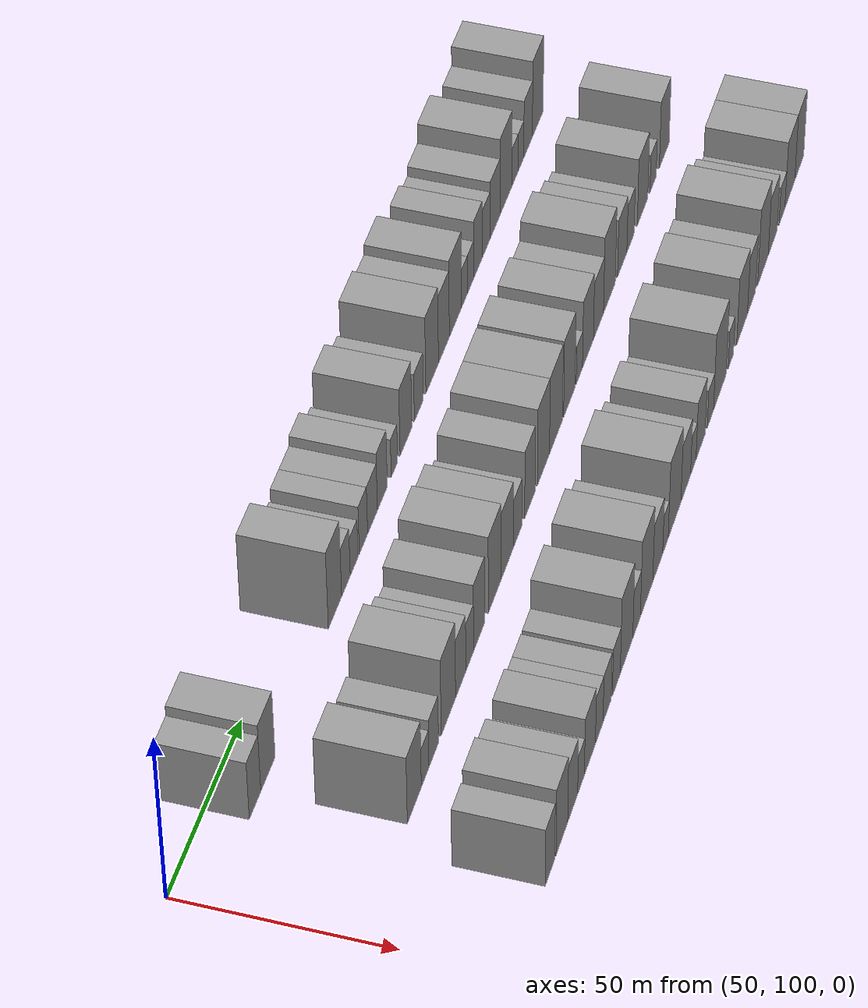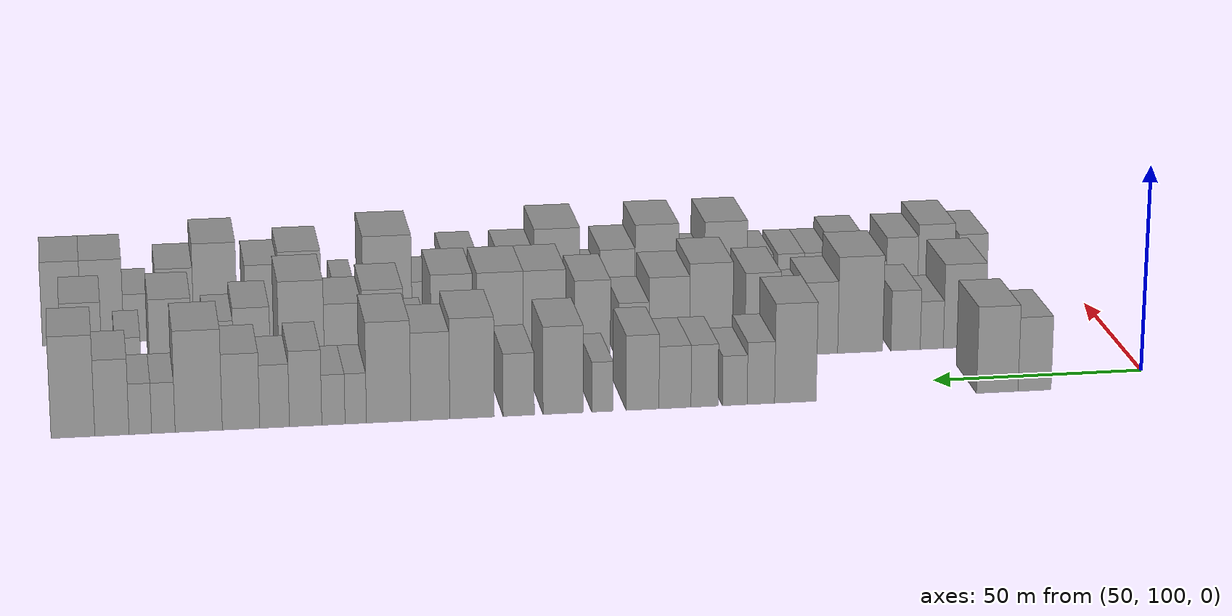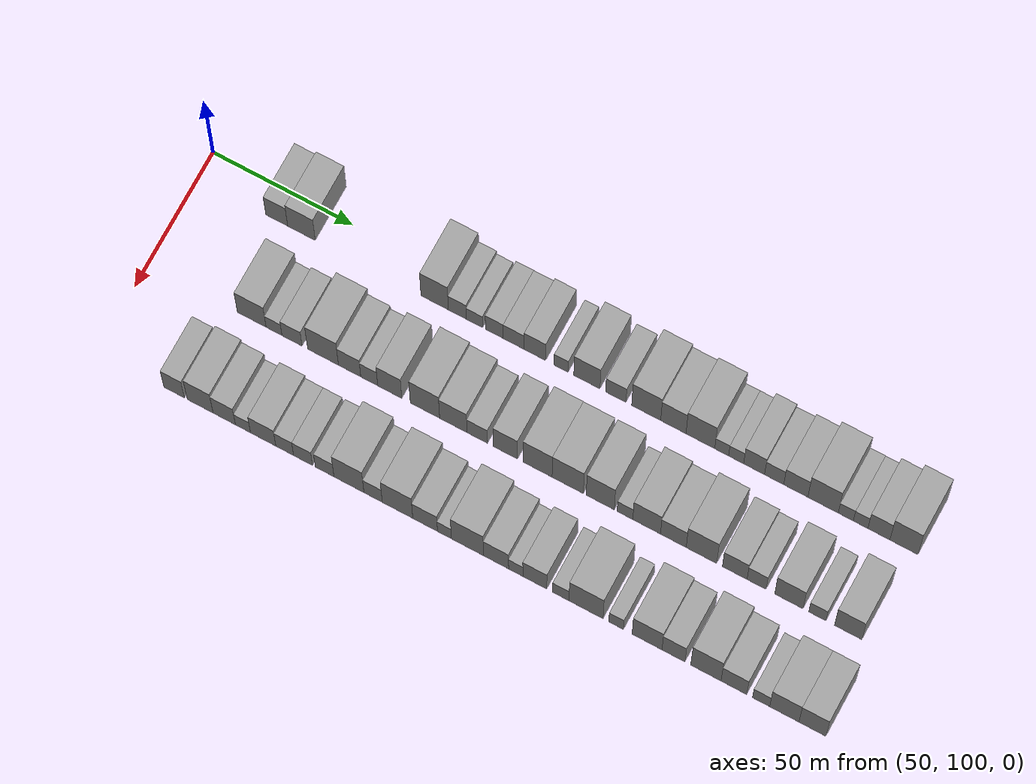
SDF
<sdf version="1.6">
 <world name="default">
  <model name="building_56">
   <static>1</static>
   <pose>50.0000 128.3599 0 0.000000 0.000000 0.000000</pose>
   <link name="link">
    <pose>0 0 9.00 0 0 0</pose>
    <collision name="collision"><geometry><box><size>20.0000 7.8384 18.0000</size></box></geometry></collision>
    <visual name="visual">
     <cast_shadows>0</cast_shadows>
     <geometry><box><size>20.0000 7.8384 18.0000</size></box></geometry>
     <material>
      <script>
       <uri>model://grey_wall/materials/scripts</uri>
       <uri>model://grey_wall/materials/textures</uri>
       <name>vrc/grey_wall</name>
      </script>
     </material>
    </visual>
   </link>
  </model>
  <model name="building_57">
   <static>1</static>
   <pose>50.0000 137.2227 0 0.000000 0.000000 0.000000</pose>
   <link name="link">
    <pose>0 0 10.50 0 0 0</pose>
    <collision name="collision"><geometry><box><size>20.0000 9.8872 21.0000</size></box></geometry></collision>
    <visual name="visual">
     <cast_shadows>0</cast_shadows>
     <geometry><box><size>20.0000 9.8872 21.0000</size></box></geometry>
     <material>
      <script>
       <uri>model://grey_wall/materials/scripts</uri>
       <uri>model://grey_wall/materials/textures</uri>
       <name>vrc/grey_wall</name>
      </script>
     </material>
    </visual>
   </link>
  </model>
  <model name="building_58">
   <static>1</static>
   <pose>50.0000 184.7847 0 0.000000 0.000000 0.000000</pose>
   <link name="link">
    <pose>0 0 12.00 0 0 0</pose>
    <collision name="collision"><geometry><box><size>20.0000 9.7456 24.0000</size></box></geometry></collision>
    <visual name="visual">
     <cast_shadows>0</cast_shadows>
     <geometry><box><size>20.0000 9.7456 24.0000</size></box></geometry>
     <material>
      <script>
       <uri>model://grey_wall/materials/scripts</uri>
       <uri>model://grey_wall/materials/textures</uri>
       <name>vrc/grey_wall</name>
      </script>
     </material>
    </visual>
   </link>
  </model>
  <model name="building_59">
   <static>1</static>
   <pose>50.0000 192.8500 0 0.000000 0.000000 0.000000</pose>
   <link name="link">
    <pose>0 0 7.50 0 0 0</pose>
    <collision name="collision"><geometry><box><size>20.0000 6.3850 15.0000</size></box></geometry></collision>
    <visual name="visual">
     <cast_shadows>0</cast_shadows>
     <geometry><box><size>20.0000 6.3850 15.0000</size></box></geometry>
     <material>
      <script>
       <uri>model://grey_wall/materials/scripts</uri>
       <uri>model://grey_wall/materials/textures</uri>
       <name>vrc/grey_wall</name>
      </script>
     </material>
    </visual>
   </link>
  </model>
  <model name="building_60">
   <static>1</static>
   <pose>50.0000 198.9338 0 0.000000 0.000000 0.000000</pose>
   <link name="link">
    <pose>0 0 6.00 0 0 0</pose>
    <collision name="collision"><geometry><box><size>20.0000 5.7826 12.0000</size></box></geometry></collision>
    <visual name="visual">
     <cast_shadows>0</cast_shadows>
     <geometry><box><size>20.0000 5.7826 12.0000</size></box></geometry>
     <material>
      <script>
       <uri>model://grey_wall/materials/scripts</uri>
       <uri>model://grey_wall/materials/textures</uri>
       <name>vrc/grey_wall</name>
      </script>
     </material>
    </visual>
   </link>
  </model>
  <model name="building_61">
   <static>1</static>
   <pose>50.0000 205.9676 0 0.000000 0.000000 0.000000</pose>
   <link name="link">
    <pose>0 0 7.50 0 0 0</pose>
    <collision name="collision"><geometry><box><size>20.0000 6.2850 15.0000</size></box></geometry></collision>
    <visual name="visual">
     <cast_shadows>0</cast_shadows>
     <geometry><box><size>20.0000 6.2850 15.0000</size></box></geometry>
     <material>
      <script>
       <uri>model://grey_wall/materials/scripts</uri>
       <uri>model://grey_wall/materials/textures</uri>
       <name>vrc/grey_wall</name>
      </script>
     </material>
    </visual>
   </link>
  </model>
  <model name="building_62">
   <static>1</static>
   <pose>50.0000 212.8217 0 0.000000 0.000000 0.000000</pose>
   <link name="link">
    <pose>0 0 7.50 0 0 0</pose>
    <collision name="collision"><geometry><box><size>20.0000 7.4231 15.0000</size></box></geometry></collision>
    <visual name="visual">
     <cast_shadows>0</cast_shadows>
     <geometry><box><size>20.0000 7.4231 15.0000</size></box></geometry>
     <material>
      <script>
       <uri>model://grey_wall/materials/scripts</uri>
       <uri>model://grey_wall/materials/textures</uri>
       <name>vrc/grey_wall</name>
      </script>
     </material>
    </visual>
   </link>
  </model>
  <model name="building_63">
   <static>1</static>
   <pose>50.0000 220.3268 0 0.000000 0.000000 0.000000</pose>
   <link name="link">
    <pose>0 0 9.00 0 0 0</pose>
    <collision name="collision"><geometry><box><size>20.0000 7.5871 18.0000</size></box></geometry></collision>
    <visual name="visual">
     <cast_shadows>0</cast_shadows>
     <geometry><box><size>20.0000 7.5871 18.0000</size></box></geometry>
     <material>
      <script>
       <uri>model://grey_wall/materials/scripts</uri>
       <uri>model://grey_wall/materials/textures</uri>
       <name>vrc/grey_wall</name>
      </script>
     </material>
    </visual>
   </link>
  </model>
  <model name="building_64">
   <static>1</static>
   <pose>50.0000 229.5875 0 0.000000 0.000000 0.000000</pose>
   <link name="link">
    <pose>0 0 6.00 0 0 0</pose>
    <collision name="collision"><geometry><box><size>20.0000 4.9344 12.0000</size></box></geometry></collision>
    <visual name="visual">
     <cast_shadows>0</cast_shadows>
     <geometry><box><size>20.0000 4.9344 12.0000</size></box></geometry>
     <material>
      <script>
       <uri>model://grey_wall/materials/scripts</uri>
       <uri>model://grey_wall/materials/textures</uri>
       <name>vrc/grey_wall</name>
      </script>
     </material>
    </visual>
   </link>
  </model>
  <model name="building_65">
   <static>1</static>
   <pose>50.0000 238.6654 0 0.000000 0.000000 0.000000</pose>
   <link name="link">
    <pose>0 0 10.50 0 0 0</pose>
    <collision name="collision"><geometry><box><size>20.0000 9.2213 21.0000</size></box></geometry></collision>
    <visual name="visual">
     <cast_shadows>0</cast_shadows>
     <geometry><box><size>20.0000 9.2213 21.0000</size></box></geometry>
     <material>
      <script>
       <uri>model://grey_wall/materials/scripts</uri>
       <uri>model://grey_wall/materials/textures</uri>
       <name>vrc/grey_wall</name>
      </script>
     </material>
    </visual>
   </link>
  </model>
  <model name="building_66">
   <static>1</static>
   <pose>50.0000 248.8577 0 0.000000 0.000000 0.000000</pose>
   <link name="link">
    <pose>0 0 7.50 0 0 0</pose>
    <collision name="collision"><geometry><box><size>20.0000 7.1634 15.0000</size></box></geometry></collision>
    <visual name="visual">
     <cast_shadows>0</cast_shadows>
     <geometry><box><size>20.0000 7.1634 15.0000</size></box></geometry>
     <material>
      <script>
       <uri>model://grey_wall/materials/scripts</uri>
       <uri>model://grey_wall/materials/textures</uri>
       <name>vrc/grey_wall</name>
      </script>
     </material>
    </visual>
   </link>
  </model>
  <model name="building_67">
   <static>1</static>
   <pose>50.0000 259.5342 0 0.000000 0.000000 0.000000</pose>
   <link name="link">
    <pose>0 0 12.00 0 0 0</pose>
    <collision name="collision"><geometry><box><size>20.0000 10.1897 24.0000</size></box></geometry></collision>
    <visual name="visual">
     <cast_shadows>0</cast_shadows>
     <geometry><box><size>20.0000 10.1897 24.0000</size></box></geometry>
     <material>
      <script>
       <uri>model://grey_wall/materials/scripts</uri>
       <uri>model://grey_wall/materials/textures</uri>
       <name>vrc/grey_wall</name>
      </script>
     </material>
    </visual>
   </link>
  </model>
  <model name="building_68">
   <static>1</static>
   <pose>50.0000 269.0666 0 0.000000 0.000000 0.000000</pose>
   <link name="link">
    <pose>0 0 10.50 0 0 0</pose>
    <collision name="collision"><geometry><box><size>20.0000 8.8751 21.0000</size></box></geometry></collision>
    <visual name="visual">
     <cast_shadows>0</cast_shadows>
     <geometry><box><size>20.0000 8.8751 21.0000</size></box></geometry>
     <material>
      <script>
       <uri>model://grey_wall/materials/scripts</uri>
       <uri>model://grey_wall/materials/textures</uri>
       <name>vrc/grey_wall</name>
      </script>
     </material>
    </visual>
   </link>
  </model>
  <model name="building_69">
   <static>1</static>
   <pose>50.0000 278.5439 0 0.000000 0.000000 0.000000</pose>
   <link name="link">
    <pose>0 0 12.00 0 0 0</pose>
    <collision name="collision"><geometry><box><size>20.0000 10.0796 24.0000</size></box></geometry></collision>
    <visual name="visual">
     <cast_shadows>0</cast_shadows>
     <geometry><box><size>20.0000 10.0796 24.0000</size></box></geometry>
     <material>
      <script>
       <uri>model://grey_wall/materials/scripts</uri>
       <uri>model://grey_wall/materials/textures</uri>
       <name>vrc/grey_wall</name>
      </script>
     </material>
    </visual>
   </link>
  </model>
  <model name="building_70">
   <static>1</static>
   <pose>50.0000 286.0088 0 0.000000 0.000000 0.000000</pose>
   <link name="link">
    <pose>0 0 6.00 0 0 0</pose>
    <collision name="collision"><geometry><box><size>20.0000 4.8501 12.0000</size></box></geometry></collision>
    <visual name="visual">
     <cast_shadows>0</cast_shadows>
     <geometry><box><size>20.0000 4.8501 12.0000</size></box></geometry>
     <material>
      <script>
       <uri>model://grey_wall/materials/scripts</uri>
       <uri>model://grey_wall/materials/textures</uri>
       <name>vrc/grey_wall</name>
      </script>
     </material>
    </visual>
   </link>
  </model>
  <model name="building_71">
   <static>1</static>
   <pose>50.0000 291.0631 0 0.000000 0.000000 0.000000</pose>
   <link name="link">
    <pose>0 0 6.00 0 0 0</pose>
    <collision name="collision"><geometry><box><size>20.0000 5.2586 12.0000</size></box></geometry></collision>
    <visual name="visual">
     <cast_shadows>0</cast_shadows>
     <geometry><box><size>20.0000 5.2586 12.0000</size></box></geometry>
     <material>
      <script>
       <uri>model://grey_wall/materials/scripts</uri>
       <uri>model://grey_wall/materials/textures</uri>
       <name>vrc/grey_wall</name>
      </script>
     </material>
    </visual>
   </link>
  </model>
  <model name="building_72">
   <static>1</static>
   <pose>50.0000 297.3465 0 0.000000 0.000000 0.000000</pose>
   <link name="link">
    <pose>0 0 9.00 0 0 0</pose>
    <collision name="collision"><geometry><box><size>20.0000 7.3082 18.0000</size></box></geometry></collision>
    <visual name="visual">
     <cast_shadows>0</cast_shadows>
     <geometry><box><size>20.0000 7.3082 18.0000</size></box></geometry>
     <material>
      <script>
       <uri>model://grey_wall/materials/scripts</uri>
       <uri>model://grey_wall/materials/textures</uri>
       <name>vrc/grey_wall</name>
      </script>
     </material>
    </visual>
   </link>
  </model>
  <model name="building_73">
   <static>1</static>
   <pose>50.0000 304.3476 0 0.000000 0.000000 0.000000</pose>
   <link name="link">
    <pose>0 0 7.50 0 0 0</pose>
    <collision name="collision"><geometry><box><size>20.0000 6.6939 15.0000</size></box></geometry></collision>
    <visual name="visual">
     <cast_shadows>0</cast_shadows>
     <geometry><box><size>20.0000 6.6939 15.0000</size></box></geometry>
     <material>
      <script>
       <uri>model://grey_wall/materials/scripts</uri>
       <uri>model://grey_wall/materials/textures</uri>
       <name>vrc/grey_wall</name>
      </script>
     </material>
    </visual>
   </link>
  </model>
  <model name="building_74">
   <static>1</static>
   <pose>50.0000 311.9067 0 0.000000 0.000000 0.000000</pose>
   <link name="link">
    <pose>0 0 9.00 0 0 0</pose>
    <collision name="collision"><geometry><box><size>20.0000 8.4244 18.0000</size></box></geometry></collision>
    <visual name="visual">
     <cast_shadows>0</cast_shadows>
     <geometry><box><size>20.0000 8.4244 18.0000</size></box></geometry>
     <material>
      <script>
       <uri>model://grey_wall/materials/scripts</uri>
       <uri>model://grey_wall/materials/textures</uri>
       <name>vrc/grey_wall</name>
      </script>
     </material>
    </visual>
   </link>
  </model>
  <model name="building_75">
   <static>1</static>
   <pose>50.0000 321.4114 0 0.000000 0.000000 0.000000</pose>
   <link name="link">
    <pose>0 0 12.00 0 0 0</pose>
    <collision name="collision"><geometry><box><size>20.0000 10.5850 24.0000</size></box></geometry></collision>
    <visual name="visual">
     <cast_shadows>0</cast_shadows>
     <geometry><box><size>20.0000 10.5850 24.0000</size></box></geometry>
     <material>
      <script>
       <uri>model://grey_wall/materials/scripts</uri>
       <uri>model://grey_wall/materials/textures</uri>
       <name>vrc/grey_wall</name>
      </script>
     </material>
    </visual>
   </link>
  </model>
  <model name="building_76">
   <static>1</static>
   <pose>50.0000 329.3236 0 0.000000 0.000000 0.000000</pose>
   <link name="link">
    <pose>0 0 6.00 0 0 0</pose>
    <collision name="collision"><geometry><box><size>20.0000 5.2394 12.0000</size></box></geometry></collision>
    <visual name="visual">
     <cast_shadows>0</cast_shadows>
     <geometry><box><size>20.0000 5.2394 12.0000</size></box></geometry>
     <material>
      <script>
       <uri>model://grey_wall/materials/scripts</uri>
       <uri>model://grey_wall/materials/textures</uri>
       <name>vrc/grey_wall</name>
      </script>
     </material>
    </visual>
   </link>
  </model>
  <model name="building_77">
   <static>1</static>
   <pose>50.0000 334.4714 0 0.000000 0.000000 0.000000</pose>
   <link name="link">
    <pose>0 0 6.00 0 0 0</pose>
    <collision name="collision"><geometry><box><size>20.0000 5.0562 12.0000</size></box></geometry></collision>
    <visual name="visual">
     <cast_shadows>0</cast_shadows>
     <geometry><box><size>20.0000 5.0562 12.0000</size></box></geometry>
     <material>
      <script>
       <uri>model://grey_wall/materials/scripts</uri>
       <uri>model://grey_wall/materials/textures</uri>
       <name>vrc/grey_wall</name>
      </script>
     </material>
    </visual>
   </link>
  </model>
  <model name="building_78">
   <static>1</static>
   <pose>50.0000 340.8125 0 0.000000 0.000000 0.000000</pose>
   <link name="link">
    <pose>0 0 9.00 0 0 0</pose>
    <collision name="collision"><geometry><box><size>20.0000 7.6260 18.0000</size></box></geometry></collision>
    <visual name="visual">
     <cast_shadows>0</cast_shadows>
     <geometry><box><size>20.0000 7.6260 18.0000</size></box></geometry>
     <material>
      <script>
       <uri>model://grey_wall/materials/scripts</uri>
       <uri>model://grey_wall/materials/textures</uri>
       <name>vrc/grey_wall</name>
      </script>
     </material>
    </visual>
   </link>
  </model>
  <model name="building_79">
   <static>1</static>
   <pose>50.0000 349.4919 0 0.000000 0.000000 0.000000</pose>
   <link name="link">
    <pose>0 0 12.00 0 0 0</pose>
    <collision name="collision"><geometry><box><size>20.0000 9.7329 24.0000</size></box></geometry></collision>
    <visual name="visual">
     <cast_shadows>0</cast_shadows>
     <geometry><box><size>20.0000 9.7329 24.0000</size></box></geometry>
     <material>
      <script>
       <uri>model://grey_wall/materials/scripts</uri>
       <uri>model://grey_wall/materials/textures</uri>
       <name>vrc/grey_wall</name>
      </script>
     </material>
    </visual>
   </link>
  </model>
  <model name="building_129">
   <static>1</static>
   <pose>82.0000 137.3584 0 0.000000 0.000000 0.000000</pose>
   <link name="link">
    <pose>0 0 10.50 0 0 0</pose>
    <collision name="collision"><geometry><box><size>20.0000 10.2473 21.0000</size></box></geometry></collision>
    <visual name="visual">
     <cast_shadows>0</cast_shadows>
     <geometry><box><size>20.0000 10.2473 21.0000</size></box></geometry>
     <material>
      <script>
       <uri>model://grey_wall/materials/scripts</uri>
       <uri>model://grey_wall/materials/textures</uri>
       <name>vrc/grey_wall</name>
      </script>
     </material>
    </visual>
   </link>
  </model>
  <model name="building_130">
   <static>1</static>
   <pose>82.0000 145.2999 0 0.000000 0.000000 0.000000</pose>
   <link name="link">
    <pose>0 0 6.00 0 0 0</pose>
    <collision name="collision"><geometry><box><size>20.0000 5.6356 12.0000</size></box></geometry></collision>
    <visual name="visual">
     <cast_shadows>0</cast_shadows>
     <geometry><box><size>20.0000 5.6356 12.0000</size></box></geometry>
     <material>
      <script>
       <uri>model://grey_wall/materials/scripts</uri>
       <uri>model://grey_wall/materials/textures</uri>
       <name>vrc/grey_wall</name>
      </script>
     </material>
    </visual>
   </link>
  </model>
  <model name="building_131">
   <static>1</static>
   <pose>82.0000 151.7029 0 0.000000 0.000000 0.000000</pose>
   <link name="link">
    <pose>0 0 7.50 0 0 0</pose>
    <collision name="collision"><geometry><box><size>20.0000 7.1705 15.0000</size></box></geometry></collision>
    <visual name="visual">
     <cast_shadows>0</cast_shadows>
     <geometry><box><size>20.0000 7.1705 15.0000</size></box></geometry>
     <material>
      <script>
       <uri>model://grey_wall/materials/scripts</uri>
       <uri>model://grey_wall/materials/textures</uri>
       <name>vrc/grey_wall</name>
      </script>
     </material>
    </visual>
   </link>
  </model>
  <model name="building_132">
   <static>1</static>
   <pose>82.0000 162.7626 0 0.000000 0.000000 0.000000</pose>
   <link name="link">
    <pose>0 0 12.00 0 0 0</pose>
    <collision name="collision"><geometry><box><size>20.0000 10.9488 24.0000</size></box></geometry></collision>
    <visual name="visual">
     <cast_shadows>0</cast_shadows>
     <geometry><box><size>20.0000 10.9488 24.0000</size></box></geometry>
     <material>
      <script>
       <uri>model://grey_wall/materials/scripts</uri>
       <uri>model://grey_wall/materials/textures</uri>
       <name>vrc/grey_wall</name>
      </script>
     </material>
    </visual>
   </link>
  </model>
  <model name="building_133">
   <static>1</static>
   <pose>82.0000 172.1983 0 0.000000 0.000000 0.000000</pose>
   <link name="link">
    <pose>0 0 9.00 0 0 0</pose>
    <collision name="collision"><geometry><box><size>20.0000 7.9226 18.0000</size></box></geometry></collision>
    <visual name="visual">
     <cast_shadows>0</cast_shadows>
     <geometry><box><size>20.0000 7.9226 18.0000</size></box></geometry>
     <material>
      <script>
       <uri>model://grey_wall/materials/scripts</uri>
       <uri>model://grey_wall/materials/textures</uri>
       <name>vrc/grey_wall</name>
      </script>
     </material>
    </visual>
   </link>
  </model>
  <model name="building_134">
   <static>1</static>
   <pose>82.0000 179.1615 0 0.000000 0.000000 0.000000</pose>
   <link name="link">
    <pose>0 0 7.50 0 0 0</pose>
    <collision name="collision"><geometry><box><size>20.0000 6.0038 15.0000</size></box></geometry></collision>
    <visual name="visual">
     <cast_shadows>0</cast_shadows>
     <geometry><box><size>20.0000 6.0038 15.0000</size></box></geometry>
     <material>
      <script>
       <uri>model://grey_wall/materials/scripts</uri>
       <uri>model://grey_wall/materials/textures</uri>
       <name>vrc/grey_wall</name>
      </script>
     </material>
    </visual>
   </link>
  </model>
  <model name="building_135">
   <static>1</static>
   <pose>82.0000 186.4365 0 0.000000 0.000000 0.000000</pose>
   <link name="link">
    <pose>0 0 10.50 0 0 0</pose>
    <collision name="collision"><geometry><box><size>20.0000 8.5461 21.0000</size></box></geometry></collision>
    <visual name="visual">
     <cast_shadows>0</cast_shadows>
     <geometry><box><size>20.0000 8.5461 21.0000</size></box></geometry>
     <material>
      <script>
       <uri>model://grey_wall/materials/scripts</uri>
       <uri>model://grey_wall/materials/textures</uri>
       <name>vrc/grey_wall</name>
      </script>
     </material>
    </visual>
   </link>
  </model>
  <model name="building_136">
   <static>1</static>
   <pose>82.0000 198.8941 0 0.000000 0.000000 0.000000</pose>
   <link name="link">
    <pose>0 0 12.00 0 0 0</pose>
    <collision name="collision"><geometry><box><size>20.0000 10.3690 24.0000</size></box></geometry></collision>
    <visual name="visual">
     <cast_shadows>0</cast_shadows>
     <geometry><box><size>20.0000 10.3690 24.0000</size></box></geometry>
     <material>
      <script>
       <uri>model://grey_wall/materials/scripts</uri>
       <uri>model://grey_wall/materials/textures</uri>
       <name>vrc/grey_wall</name>
      </script>
     </material>
    </visual>
   </link>
  </model>
  <model name="building_137">
   <static>1</static>
   <pose>82.0000 208.9224 0 0.000000 0.000000 0.000000</pose>
   <link name="link">
    <pose>0 0 10.50 0 0 0</pose>
    <collision name="collision"><geometry><box><size>20.0000 9.6878 21.0000</size></box></geometry></collision>
    <visual name="visual">
     <cast_shadows>0</cast_shadows>
     <geometry><box><size>20.0000 9.6878 21.0000</size></box></geometry>
     <material>
      <script>
       <uri>model://grey_wall/materials/scripts</uri>
       <uri>model://grey_wall/materials/textures</uri>
       <name>vrc/grey_wall</name>
      </script>
     </material>
    </visual>
   </link>
  </model>
  <model name="building_138">
   <static>1</static>
   <pose>82.0000 217.3821 0 0.000000 0.000000 0.000000</pose>
   <link name="link">
    <pose>0 0 7.50 0 0 0</pose>
    <collision name="collision"><geometry><box><size>20.0000 7.2315 15.0000</size></box></geometry></collision>
    <visual name="visual">
     <cast_shadows>0</cast_shadows>
     <geometry><box><size>20.0000 7.2315 15.0000</size></box></geometry>
     <material>
      <script>
       <uri>model://grey_wall/materials/scripts</uri>
       <uri>model://grey_wall/materials/textures</uri>
       <name>vrc/grey_wall</name>
      </script>
     </material>
    </visual>
   </link>
  </model>
  <model name="building_139">
   <static>1</static>
   <pose>82.0000 227.2700 0 0.000000 0.000000 0.000000</pose>
   <link name="link">
    <pose>0 0 10.50 0 0 0</pose>
    <collision name="collision"><geometry><box><size>20.0000 8.5444 21.0000</size></box></geometry></collision>
    <visual name="visual">
     <cast_shadows>0</cast_shadows>
     <geometry><box><size>20.0000 8.5444 21.0000</size></box></geometry>
     <material>
      <script>
       <uri>model://grey_wall/materials/scripts</uri>
       <uri>model://grey_wall/materials/textures</uri>
       <name>vrc/grey_wall</name>
      </script>
     </material>
    </visual>
   </link>
  </model>
  <model name="building_140">
   <static>1</static>
   <pose>82.0000 238.6148 0 0.000000 0.000000 0.000000</pose>
   <link name="link">
    <pose>0 0 12.00 0 0 0</pose>
    <collision name="collision"><geometry><box><size>20.0000 10.1452 24.0000</size></box></geometry></collision>
    <visual name="visual">
     <cast_shadows>0</cast_shadows>
     <geometry><box><size>20.0000 10.1452 24.0000</size></box></geometry>
     <material>
      <script>
       <uri>model://grey_wall/materials/scripts</uri>
       <uri>model://grey_wall/materials/textures</uri>
       <name>vrc/grey_wall</name>
      </script>
     </material>
    </visual>
   </link>
  </model>
  <model name="building_141">
   <static>1</static>
   <pose>82.0000 249.1798 0 0.000000 0.000000 0.000000</pose>
   <link name="link">
    <pose>0 0 12.00 0 0 0</pose>
    <collision name="collision"><geometry><box><size>20.0000 10.9849 24.0000</size></box></geometry></collision>
    <visual name="visual">
     <cast_shadows>0</cast_shadows>
     <geometry><box><size>20.0000 10.9849 24.0000</size></box></geometry>
     <material>
      <script>
       <uri>model://grey_wall/materials/scripts</uri>
       <uri>model://grey_wall/materials/textures</uri>
       <name>vrc/grey_wall</name>
      </script>
     </material>
    </visual>
   </link>
  </model>
  <model name="building_142">
   <static>1</static>
   <pose>82.0000 260.5869 0 0.000000 0.000000 0.000000</pose>
   <link name="link">
    <pose>0 0 12.00 0 0 0</pose>
    <collision name="collision"><geometry><box><size>20.0000 9.8292 24.0000</size></box></geometry></collision>
    <visual name="visual">
     <cast_shadows>0</cast_shadows>
     <geometry><box><size>20.0000 9.8292 24.0000</size></box></geometry>
     <material>
      <script>
       <uri>model://grey_wall/materials/scripts</uri>
       <uri>model://grey_wall/materials/textures</uri>
       <name>vrc/grey_wall</name>
      </script>
     </material>
    </visual>
   </link>
  </model>
  <model name="building_143">
   <static>1</static>
   <pose>82.0000 269.2338 0 0.000000 0.000000 0.000000</pose>
   <link name="link">
    <pose>0 0 6.00 0 0 0</pose>
    <collision name="collision"><geometry><box><size>20.0000 5.4647 12.0000</size></box></geometry></collision>
    <visual name="visual">
     <cast_shadows>0</cast_shadows>
     <geometry><box><size>20.0000 5.4647 12.0000</size></box></geometry>
     <material>
      <script>
       <uri>model://grey_wall/materials/scripts</uri>
       <uri>model://grey_wall/materials/textures</uri>
       <name>vrc/grey_wall</name>
      </script>
     </material>
    </visual>
   </link>
  </model>
  <model name="building_144">
   <static>1</static>
   <pose>82.0000 276.8035 0 0.000000 0.000000 0.000000</pose>
   <link name="link">
    <pose>0 0 10.50 0 0 0</pose>
    <collision name="collision"><geometry><box><size>20.0000 9.6748 21.0000</size></box></geometry></collision>
    <visual name="visual">
     <cast_shadows>0</cast_shadows>
     <geometry><box><size>20.0000 9.6748 21.0000</size></box></geometry>
     <material>
      <script>
       <uri>model://grey_wall/materials/scripts</uri>
       <uri>model://grey_wall/materials/textures</uri>
       <name>vrc/grey_wall</name>
      </script>
     </material>
    </visual>
   </link>
  </model>
  <model name="building_145">
   <static>1</static>
   <pose>82.0000 286.1169 0 0.000000 0.000000 0.000000</pose>
   <link name="link">
    <pose>0 0 9.00 0 0 0</pose>
    <collision name="collision"><geometry><box><size>20.0000 8.9520 18.0000</size></box></geometry></collision>
    <visual name="visual">
     <cast_shadows>0</cast_shadows>
     <geometry><box><size>20.0000 8.9520 18.0000</size></box></geometry>
     <material>
      <script>
       <uri>model://grey_wall/materials/scripts</uri>
       <uri>model://grey_wall/materials/textures</uri>
       <name>vrc/grey_wall</name>
      </script>
     </material>
    </visual>
   </link>
  </model>
  <model name="building_146">
   <static>1</static>
   <pose>82.0000 295.9011 0 0.000000 0.000000 0.000000</pose>
   <link name="link">
    <pose>0 0 12.00 0 0 0</pose>
    <collision name="collision"><geometry><box><size>20.0000 10.6165 24.0000</size></box></geometry></collision>
    <visual name="visual">
     <cast_shadows>0</cast_shadows>
     <geometry><box><size>20.0000 10.6165 24.0000</size></box></geometry>
     <material>
      <script>
       <uri>model://grey_wall/materials/scripts</uri>
       <uri>model://grey_wall/materials/textures</uri>
       <name>vrc/grey_wall</name>
      </script>
     </material>
    </visual>
   </link>
  </model>
  <model name="building_147">
   <static>1</static>
   <pose>82.0000 307.4926 0 0.000000 0.000000 0.000000</pose>
   <link name="link">
    <pose>0 0 9.00 0 0 0</pose>
    <collision name="collision"><geometry><box><size>20.0000 8.5664 18.0000</size></box></geometry></collision>
    <visual name="visual">
     <cast_shadows>0</cast_shadows>
     <geometry><box><size>20.0000 8.5664 18.0000</size></box></geometry>
     <material>
      <script>
       <uri>model://grey_wall/materials/scripts</uri>
       <uri>model://grey_wall/materials/textures</uri>
       <name>vrc/grey_wall</name>
      </script>
     </material>
    </visual>
   </link>
  </model>
  <model name="building_148">
   <static>1</static>
   <pose>82.0000 315.0763 0 0.000000 0.000000 0.000000</pose>
   <link name="link">
    <pose>0 0 7.50 0 0 0</pose>
    <collision name="collision"><geometry><box><size>20.0000 6.6009 15.0000</size></box></geometry></collision>
    <visual name="visual">
     <cast_shadows>0</cast_shadows>
     <geometry><box><size>20.0000 6.6009 15.0000</size></box></geometry>
     <material>
      <script>
       <uri>model://grey_wall/materials/scripts</uri>
       <uri>model://grey_wall/materials/textures</uri>
       <name>vrc/grey_wall</name>
      </script>
     </material>
    </visual>
   </link>
  </model>
  <model name="building_149">
   <static>1</static>
   <pose>82.0000 326.2870 0 0.000000 0.000000 0.000000</pose>
   <link name="link">
    <pose>0 0 10.50 0 0 0</pose>
    <collision name="collision"><geometry><box><size>20.0000 9.8205 21.0000</size></box></geometry></collision>
    <visual name="visual">
     <cast_shadows>0</cast_shadows>
     <geometry><box><size>20.0000 9.8205 21.0000</size></box></geometry>
     <material>
      <script>
       <uri>model://grey_wall/materials/scripts</uri>
       <uri>model://grey_wall/materials/textures</uri>
       <name>vrc/grey_wall</name>
      </script>
     </material>
    </visual>
   </link>
  </model>
  <model name="building_150">
   <static>1</static>
   <pose>82.0000 336.1662 0 0.000000 0.000000 0.000000</pose>
   <link name="link">
    <pose>0 0 6.00 0 0 0</pose>
    <collision name="collision"><geometry><box><size>20.0000 5.9378 12.0000</size></box></geometry></collision>
    <visual name="visual">
     <cast_shadows>0</cast_shadows>
     <geometry><box><size>20.0000 5.9378 12.0000</size></box></geometry>
     <material>
      <script>
       <uri>model://grey_wall/materials/scripts</uri>
       <uri>model://grey_wall/materials/textures</uri>
       <name>vrc/grey_wall</name>
      </script>
     </material>
    </visual>
   </link>
  </model>
  <model name="building_151">
   <static>1</static>
   <pose>82.0000 346.8562 0 0.000000 0.000000 0.000000</pose>
   <link name="link">
    <pose>0 0 10.50 0 0 0</pose>
    <collision name="collision"><geometry><box><size>20.0000 9.4422 21.0000</size></box></geometry></collision>
    <visual name="visual">
     <cast_shadows>0</cast_shadows>
     <geometry><box><size>20.0000 9.4422 21.0000</size></box></geometry>
     <material>
      <script>
       <uri>model://grey_wall/materials/scripts</uri>
       <uri>model://grey_wall/materials/textures</uri>
       <name>vrc/grey_wall</name>
      </script>
     </material>
    </visual>
   </link>
  </model>
  <model name="building_198">
   <static>1</static>
   <pose>114.0000 127.6943 0 0.000000 0.000000 0.000000</pose>
   <link name="link">
    <pose>0 0 9.00 0 0 0</pose>
    <collision name="collision"><geometry><box><size>20.0000 7.3404 18.0000</size></box></geometry></collision>
    <visual name="visual">
     <cast_shadows>0</cast_shadows>
     <geometry><box><size>20.0000 7.3404 18.0000</size></box></geometry>
     <material>
      <script>
       <uri>model://grey_wall/materials/scripts</uri>
       <uri>model://grey_wall/materials/textures</uri>
       <name>vrc/grey_wall</name>
      </script>
     </material>
    </visual>
   </link>
  </model>
  <model name="building_199">
   <static>1</static>
   <pose>114.0000 136.9642 0 0.000000 0.000000 0.000000</pose>
   <link name="link">
    <pose>0 0 10.50 0 0 0</pose>
    <collision name="collision"><geometry><box><size>20.0000 9.1994 21.0000</size></box></geometry></collision>
    <visual name="visual">
     <cast_shadows>0</cast_shadows>
     <geometry><box><size>20.0000 9.1994 21.0000</size></box></geometry>
     <material>
      <script>
       <uri>model://grey_wall/materials/scripts</uri>
       <uri>model://grey_wall/materials/textures</uri>
       <name>vrc/grey_wall</name>
      </script>
     </material>
    </visual>
   </link>
  </model>
  <model name="building_200">
   <static>1</static>
   <pose>114.0000 145.5377 0 0.000000 0.000000 0.000000</pose>
   <link name="link">
    <pose>0 0 9.00 0 0 0</pose>
    <collision name="collision"><geometry><box><size>20.0000 7.9476 18.0000</size></box></geometry></collision>
    <visual name="visual">
     <cast_shadows>0</cast_shadows>
     <geometry><box><size>20.0000 7.9476 18.0000</size></box></geometry>
     <material>
      <script>
       <uri>model://grey_wall/materials/scripts</uri>
       <uri>model://grey_wall/materials/textures</uri>
       <name>vrc/grey_wall</name>
      </script>
     </material>
    </visual>
   </link>
  </model>
  <model name="building_201">
   <static>1</static>
   <pose>114.0000 152.1991 0 0.000000 0.000000 0.000000</pose>
   <link name="link">
    <pose>0 0 6.00 0 0 0</pose>
    <collision name="collision"><geometry><box><size>20.0000 5.3752 12.0000</size></box></geometry></collision>
    <visual name="visual">
     <cast_shadows>0</cast_shadows>
     <geometry><box><size>20.0000 5.3752 12.0000</size></box></geometry>
     <material>
      <script>
       <uri>model://grey_wall/materials/scripts</uri>
       <uri>model://grey_wall/materials/textures</uri>
       <name>vrc/grey_wall</name>
      </script>
     </material>
    </visual>
   </link>
  </model>
  <model name="building_202">
   <static>1</static>
   <pose>114.0000 159.3709 0 0.000000 0.000000 0.000000</pose>
   <link name="link">
    <pose>0 0 9.00 0 0 0</pose>
    <collision name="collision"><geometry><box><size>20.0000 8.9683 18.0000</size></box></geometry></collision>
    <visual name="visual">
     <cast_shadows>0</cast_shadows>
     <geometry><box><size>20.0000 8.9683 18.0000</size></box></geometry>
     <material>
      <script>
       <uri>model://grey_wall/materials/scripts</uri>
       <uri>model://grey_wall/materials/textures</uri>
       <name>vrc/grey_wall</name>
      </script>
     </material>
    </visual>
   </link>
  </model>
  <model name="building_203">
   <static>1</static>
   <pose>114.0000 166.9862 0 0.000000 0.000000 0.000000</pose>
   <link name="link">
    <pose>0 0 7.50 0 0 0</pose>
    <collision name="collision"><geometry><box><size>20.0000 6.2623 15.0000</size></box></geometry></collision>
    <visual name="visual">
     <cast_shadows>0</cast_shadows>
     <geometry><box><size>20.0000 6.2623 15.0000</size></box></geometry>
     <material>
      <script>
       <uri>model://grey_wall/materials/scripts</uri>
       <uri>model://grey_wall/materials/textures</uri>
       <name>vrc/grey_wall</name>
      </script>
     </material>
    </visual>
   </link>
  </model>
  <model name="building_204">
   <static>1</static>
   <pose>114.0000 173.4697 0 0.000000 0.000000 0.000000</pose>
   <link name="link">
    <pose>0 0 7.50 0 0 0</pose>
    <collision name="collision"><geometry><box><size>20.0000 6.7047 15.0000</size></box></geometry></collision>
    <visual name="visual">
     <cast_shadows>0</cast_shadows>
     <geometry><box><size>20.0000 6.7047 15.0000</size></box></geometry>
     <material>
      <script>
       <uri>model://grey_wall/materials/scripts</uri>
       <uri>model://grey_wall/materials/textures</uri>
       <name>vrc/grey_wall</name>
      </script>
     </material>
    </visual>
   </link>
  </model>
  <model name="building_205">
   <static>1</static>
   <pose>114.0000 181.1130 0 0.000000 0.000000 0.000000</pose>
   <link name="link">
    <pose>0 0 7.50 0 0 0</pose>
    <collision name="collision"><geometry><box><size>20.0000 6.5818 15.0000</size></box></geometry></collision>
    <visual name="visual">
     <cast_shadows>0</cast_shadows>
     <geometry><box><size>20.0000 6.5818 15.0000</size></box></geometry>
     <material>
      <script>
       <uri>model://grey_wall/materials/scripts</uri>
       <uri>model://grey_wall/materials/textures</uri>
       <name>vrc/grey_wall</name>
      </script>
     </material>
    </visual>
   </link>
  </model>
  <model name="building_206">
   <static>1</static>
   <pose>114.0000 189.7043 0 0.000000 0.000000 0.000000</pose>
   <link name="link">
    <pose>0 0 12.00 0 0 0</pose>
    <collision name="collision"><geometry><box><size>20.0000 10.6008 24.0000</size></box></geometry></collision>
    <visual name="visual">
     <cast_shadows>0</cast_shadows>
     <geometry><box><size>20.0000 10.6008 24.0000</size></box></geometry>
     <material>
      <script>
       <uri>model://grey_wall/materials/scripts</uri>
       <uri>model://grey_wall/materials/textures</uri>
       <name>vrc/grey_wall</name>
      </script>
     </material>
    </visual>
   </link>
  </model>
  <model name="building_207">
   <static>1</static>
   <pose>114.0000 198.2244 0 0.000000 0.000000 0.000000</pose>
   <link name="link">
    <pose>0 0 7.50 0 0 0</pose>
    <collision name="collision"><geometry><box><size>20.0000 6.4396 15.0000</size></box></geometry></collision>
    <visual name="visual">
     <cast_shadows>0</cast_shadows>
     <geometry><box><size>20.0000 6.4396 15.0000</size></box></geometry>
     <material>
      <script>
       <uri>model://grey_wall/materials/scripts</uri>
       <uri>model://grey_wall/materials/textures</uri>
       <name>vrc/grey_wall</name>
      </script>
     </material>
    </visual>
   </link>
  </model>
  <model name="building_208">
   <static>1</static>
   <pose>114.0000 206.8115 0 0.000000 0.000000 0.000000</pose>
   <link name="link">
    <pose>0 0 12.00 0 0 0</pose>
    <collision name="collision"><geometry><box><size>20.0000 10.7345 24.0000</size></box></geometry></collision>
    <visual name="visual">
     <cast_shadows>0</cast_shadows>
     <geometry><box><size>20.0000 10.7345 24.0000</size></box></geometry>
     <material>
      <script>
       <uri>model://grey_wall/materials/scripts</uri>
       <uri>model://grey_wall/materials/textures</uri>
       <name>vrc/grey_wall</name>
      </script>
     </material>
    </visual>
   </link>
  </model>
  <model name="building_209">
   <static>1</static>
   <pose>114.0000 216.5246 0 0.000000 0.000000 0.000000</pose>
   <link name="link">
    <pose>0 0 9.00 0 0 0</pose>
    <collision name="collision"><geometry><box><size>20.0000 8.6918 18.0000</size></box></geometry></collision>
    <visual name="visual">
     <cast_shadows>0</cast_shadows>
     <geometry><box><size>20.0000 8.6918 18.0000</size></box></geometry>
     <material>
      <script>
       <uri>model://grey_wall/materials/scripts</uri>
       <uri>model://grey_wall/materials/textures</uri>
       <name>vrc/grey_wall</name>
      </script>
     </material>
    </visual>
   </link>
  </model>
  <model name="building_210">
   <static>1</static>
   <pose>114.0000 223.3165 0 0.000000 0.000000 0.000000</pose>
   <link name="link">
    <pose>0 0 6.00 0 0 0</pose>
    <collision name="collision"><geometry><box><size>20.0000 4.8919 12.0000</size></box></geometry></collision>
    <visual name="visual">
     <cast_shadows>0</cast_shadows>
     <geometry><box><size>20.0000 4.8919 12.0000</size></box></geometry>
     <material>
      <script>
       <uri>model://grey_wall/materials/scripts</uri>
       <uri>model://grey_wall/materials/textures</uri>
       <name>vrc/grey_wall</name>
      </script>
     </material>
    </visual>
   </link>
  </model>
  <model name="building_211">
   <static>1</static>
   <pose>114.0000 231.3942 0 0.000000 0.000000 0.000000</pose>
   <link name="link">
    <pose>0 0 12.00 0 0 0</pose>
    <collision name="collision"><geometry><box><size>20.0000 11.2636 24.0000</size></box></geometry></collision>
    <visual name="visual">
     <cast_shadows>0</cast_shadows>
     <geometry><box><size>20.0000 11.2636 24.0000</size></box></geometry>
     <material>
      <script>
       <uri>model://grey_wall/materials/scripts</uri>
       <uri>model://grey_wall/materials/textures</uri>
       <name>vrc/grey_wall</name>
      </script>
     </material>
    </visual>
   </link>
  </model>
  <model name="building_212">
   <static>1</static>
   <pose>114.0000 241.4114 0 0.000000 0.000000 0.000000</pose>
   <link name="link">
    <pose>0 0 9.00 0 0 0</pose>
    <collision name="collision"><geometry><box><size>20.0000 8.7707 18.0000</size></box></geometry></collision>
    <visual name="visual">
     <cast_shadows>0</cast_shadows>
     <geometry><box><size>20.0000 8.7707 18.0000</size></box></geometry>
     <material>
      <script>
       <uri>model://grey_wall/materials/scripts</uri>
       <uri>model://grey_wall/materials/textures</uri>
       <name>vrc/grey_wall</name>
      </script>
     </material>
    </visual>
   </link>
  </model>
  <model name="building_213">
   <static>1</static>
   <pose>114.0000 248.2952 0 0.000000 0.000000 0.000000</pose>
   <link name="link">
    <pose>0 0 6.00 0 0 0</pose>
    <collision name="collision"><geometry><box><size>20.0000 4.9968 12.0000</size></box></geometry></collision>
    <visual name="visual">
     <cast_shadows>0</cast_shadows>
     <geometry><box><size>20.0000 4.9968 12.0000</size></box></geometry>
     <material>
      <script>
       <uri>model://grey_wall/materials/scripts</uri>
       <uri>model://grey_wall/materials/textures</uri>
       <name>vrc/grey_wall</name>
      </script>
     </material>
    </visual>
   </link>
  </model>
  <model name="building_214">
   <static>1</static>
   <pose>114.0000 254.9642 0 0.000000 0.000000 0.000000</pose>
   <link name="link">
    <pose>0 0 9.00 0 0 0</pose>
    <collision name="collision"><geometry><box><size>20.0000 8.3412 18.0000</size></box></geometry></collision>
    <visual name="visual">
     <cast_shadows>0</cast_shadows>
     <geometry><box><size>20.0000 8.3412 18.0000</size></box></geometry>
     <material>
      <script>
       <uri>model://grey_wall/materials/scripts</uri>
       <uri>model://grey_wall/materials/textures</uri>
       <name>vrc/grey_wall</name>
      </script>
     </material>
    </visual>
   </link>
  </model>
  <model name="building_215">
   <static>1</static>
   <pose>114.0000 264.0211 0 0.000000 0.000000 0.000000</pose>
   <link name="link">
    <pose>0 0 6.00 0 0 0</pose>
    <collision name="collision"><geometry><box><size>20.0000 5.7726 12.0000</size></box></geometry></collision>
    <visual name="visual">
     <cast_shadows>0</cast_shadows>
     <geometry><box><size>20.0000 5.7726 12.0000</size></box></geometry>
     <material>
      <script>
       <uri>model://grey_wall/materials/scripts</uri>
       <uri>model://grey_wall/materials/textures</uri>
       <name>vrc/grey_wall</name>
      </script>
     </material>
    </visual>
   </link>
  </model>
  <model name="building_216">
   <static>1</static>
   <pose>114.0000 272.8344 0 0.000000 0.000000 0.000000</pose>
   <link name="link">
    <pose>0 0 12.00 0 0 0</pose>
    <collision name="collision"><geometry><box><size>20.0000 11.8541 24.0000</size></box></geometry></collision>
    <visual name="visual">
     <cast_shadows>0</cast_shadows>
     <geometry><box><size>20.0000 11.8541 24.0000</size></box></geometry>
     <material>
      <script>
       <uri>model://grey_wall/materials/scripts</uri>
       <uri>model://grey_wall/materials/textures</uri>
       <name>vrc/grey_wall</name>
      </script>
     </material>
    </visual>
   </link>
  </model>
  <model name="building_217">
   <static>1</static>
   <pose>114.0000 283.3112 0 0.000000 0.000000 0.000000</pose>
   <link name="link">
    <pose>0 0 6.00 0 0 0</pose>
    <collision name="collision"><geometry><box><size>20.0000 5.0994 12.0000</size></box></geometry></collision>
    <visual name="visual">
     <cast_shadows>0</cast_shadows>
     <geometry><box><size>20.0000 5.0994 12.0000</size></box></geometry>
     <material>
      <script>
       <uri>model://grey_wall/materials/scripts</uri>
       <uri>model://grey_wall/materials/textures</uri>
       <name>vrc/grey_wall</name>
      </script>
     </material>
    </visual>
   </link>
  </model>
  <model name="building_218">
   <static>1</static>
   <pose>114.0000 294.0499 0 0.000000 0.000000 0.000000</pose>
   <link name="link">
    <pose>0 0 10.50 0 0 0</pose>
    <collision name="collision"><geometry><box><size>20.0000 10.3780 21.0000</size></box></geometry></collision>
    <visual name="visual">
     <cast_shadows>0</cast_shadows>
     <geometry><box><size>20.0000 10.3780 21.0000</size></box></geometry>
     <material>
      <script>
       <uri>model://grey_wall/materials/scripts</uri>
       <uri>model://grey_wall/materials/textures</uri>
       <name>vrc/grey_wall</name>
      </script>
     </material>
    </visual>
   </link>
  </model>
  <model name="building_219">
   <static>1</static>
   <pose>114.0000 303.2177 0 0.000000 0.000000 0.000000</pose>
   <link name="link">
    <pose>0 0 9.00 0 0 0</pose>
    <collision name="collision"><geometry><box><size>20.0000 7.9575 18.0000</size></box></geometry></collision>
    <visual name="visual">
     <cast_shadows>0</cast_shadows>
     <geometry><box><size>20.0000 7.9575 18.0000</size></box></geometry>
     <material>
      <script>
       <uri>model://grey_wall/materials/scripts</uri>
       <uri>model://grey_wall/materials/textures</uri>
       <name>vrc/grey_wall</name>
      </script>
     </material>
    </visual>
   </link>
  </model>
  <model name="building_220">
   <static>1</static>
   <pose>114.0000 314.4315 0 0.000000 0.000000 0.000000</pose>
   <link name="link">
    <pose>0 0 12.00 0 0 0</pose>
    <collision name="collision"><geometry><box><size>20.0000 10.4700 24.0000</size></box></geometry></collision>
    <visual name="visual">
     <cast_shadows>0</cast_shadows>
     <geometry><box><size>20.0000 10.4700 24.0000</size></box></geometry>
     <material>
      <script>
       <uri>model://grey_wall/materials/scripts</uri>
       <uri>model://grey_wall/materials/textures</uri>
       <name>vrc/grey_wall</name>
      </script>
     </material>
    </visual>
   </link>
  </model>
  <model name="building_221">
   <static>1</static>
   <pose>114.0000 324.1157 0 0.000000 0.000000 0.000000</pose>
   <link name="link">
    <pose>0 0 9.00 0 0 0</pose>
    <collision name="collision"><geometry><box><size>20.0000 8.8985 18.0000</size></box></geometry></collision>
    <visual name="visual">
     <cast_shadows>0</cast_shadows>
     <geometry><box><size>20.0000 8.8985 18.0000</size></box></geometry>
     <material>
      <script>
       <uri>model://grey_wall/materials/scripts</uri>
       <uri>model://grey_wall/materials/textures</uri>
       <name>vrc/grey_wall</name>
      </script>
     </material>
    </visual>
   </link>
  </model>
  <model name="building_222">
   <static>1</static>
   <pose>114.0000 333.5293 0 0.000000 0.000000 0.000000</pose>
   <link name="link">
    <pose>0 0 6.00 0 0 0</pose>
    <collision name="collision"><geometry><box><size>20.0000 5.9288 12.0000</size></box></geometry></collision>
    <visual name="visual">
     <cast_shadows>0</cast_shadows>
     <geometry><box><size>20.0000 5.9288 12.0000</size></box></geometry>
     <material>
      <script>
       <uri>model://grey_wall/materials/scripts</uri>
       <uri>model://grey_wall/materials/textures</uri>
       <name>vrc/grey_wall</name>
      </script>
     </material>
    </visual>
   </link>
  </model>
  <model name="building_223">
   <static>1</static>
   <pose>114.0000 341.5367 0 0.000000 0.000000 0.000000</pose>
   <link name="link">
    <pose>0 0 10.50 0 0 0</pose>
    <collision name="collision"><geometry><box><size>20.0000 10.0859 21.0000</size></box></geometry></collision>
    <visual name="visual">
     <cast_shadows>0</cast_shadows>
     <geometry><box><size>20.0000 10.0859 21.0000</size></box></geometry>
     <material>
      <script>
       <uri>model://grey_wall/materials/scripts</uri>
       <uri>model://grey_wall/materials/textures</uri>
       <name>vrc/grey_wall</name>
      </script>
     </material>
    </visual>
   </link>
  </model>
  <model name="building_224">
   <static>1</static>
   <pose>114.0000 351.2242 0 0.000000 0.000000 0.000000</pose>
   <link name="link">
    <pose>0 0 10.50 0 0 0</pose>
    <collision name="collision"><geometry><box><size>20.0000 9.2892 21.0000</size></box></geometry></collision>
    <visual name="visual">
     <cast_shadows>0</cast_shadows>
     <geometry><box><size>20.0000 9.2892 21.0000</size></box></geometry>
     <material>
      <script>
       <uri>model://grey_wall/materials/scripts</uri>
       <uri>model://grey_wall/materials/textures</uri>
       <name>vrc/grey_wall</name>
      </script>
     </material>
    </visual>
   </link>
  </model>
 </world>
</sdf>
